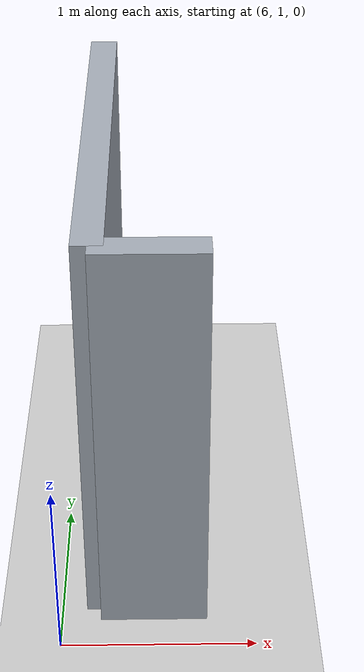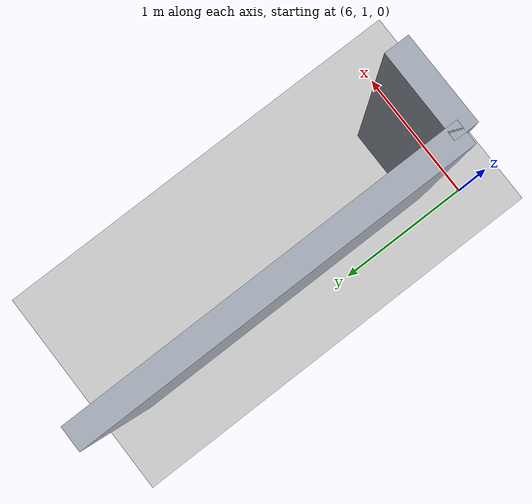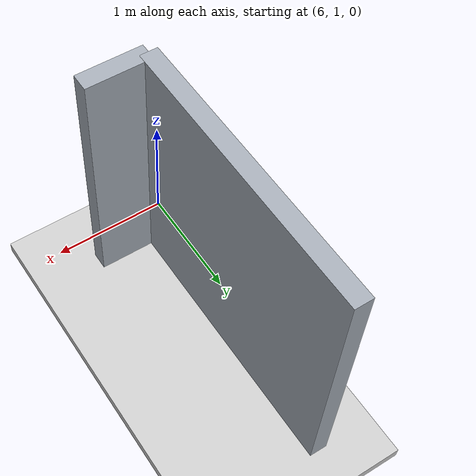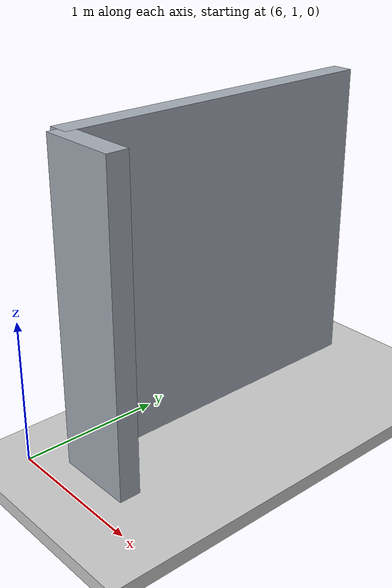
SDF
<sdf version="1.9">
 <world name="default">
  <model name="ground_plane">
   <static>true</static>
   <pose>4.75 0 -0.05 0 0 0</pose>
   <link name="body">
    <collision name="collision"><geometry><box><size>13.5 12 0.1</size></box></geometry></collision>
    <visual name="visual">
     <geometry><box><size>13.5 12 0.1</size></box></geometry>
     <material><ambient>0.8 0.8 0.8 1</ambient><diffuse>0.8 0.8 0.8 1</diffuse></material>
    </visual>
   </link>
  </model>
  <model name="room_1_2_-1">
   <static>true</static>
   <pose>6.2 2.45 1.1 0 0 0</pose>
   <link name="body">
    <collision name="collision"><geometry><box><size>0.15 2.4 2.2</size></box></geometry></collision>
    <visual name="visual">
     <geometry><box><size>0.15 2.4 2.2</size></box></geometry>
     <material><ambient>0.65 0.68 0.72 1</ambient><diffuse>0.65 0.68 0.72 1</diffuse></material>
    </visual>
   </link>
  </model>
  <model name="jamb_1_2_-1">
   <static>true</static>
   <pose>6.475 1.25 1.1 0 0 0</pose>
   <link name="body">
    <collision name="collision"><geometry><box><size>0.55 0.15 2.2</size></box></geometry></collision>
    <visual name="visual">
     <geometry><box><size>0.55 0.15 2.2</size></box></geometry>
     <material><ambient>0.65 0.68 0.72 1</ambient><diffuse>0.65 0.68 0.72 1</diffuse></material>
    </visual>
   </link>
  </model>
 </world>
</sdf>
